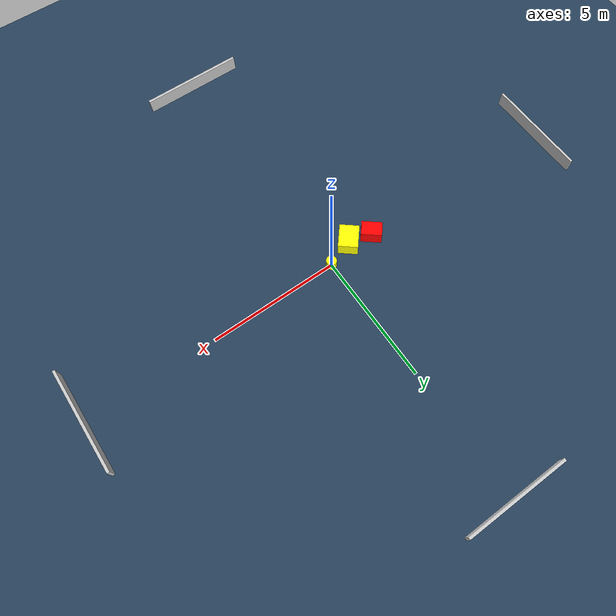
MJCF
<?xml version="1.0" ?>
<mujoco model="generated_environment">
  <option timestep="0.01" integrator="RK4" cone="elliptic"/>
  <default>
    <geom density="1"/>
  </default>
  <asset>
    <texture builtin="gradient" height="3072" name="skybox" rgb1="0.3 0.5 0.7" rgb2="0 0 0" type="skybox" width="512"/>
    <texture builtin="checker" height="300" name="groundplane" rgb1="0.2 0.3 0.4" rgb2="0.1 0.2 0.3" type="2d" width="300"/>
    <material name="groundplane" reflectance="0.2" texrepeat="5 5" texture="groundplane"/>
  </asset>
  <worldbody>
    <light dir="0 0 -1" directional="true" pos="0 0 1.5"/>
    <geom condim="3" friction="0.5 0.005 0.001" material="groundplane" name="floor" pos="0 0 0" size="0 0 0.05" type="plane"/>
    <body name="walls">
      <geom name="wall_1" condim="4" pos="-10.0 0.0 0.3" rgba="0.800000011920929 0.800000011920929 0.800000011920929 1.0" size="0.05 2.0 0.3" type="box"/>
      <geom name="wall_2" condim="4" pos="10.0 0.0 0.3" rgba="0.800000011920929 0.800000011920929 0.800000011920929 1.0" size="0.05 2.0 0.3" type="box"/>
      <geom name="wall_3" condim="4" pos="0.0 -10.0 0.3" rgba="0.800000011920929 0.800000011920929 0.800000011920929 1.0" size="2.0 0.05 0.3" type="box"/>
      <geom name="wall_4" condim="4" pos="0.0 10.0 0.3" rgba="0.800000011920929 0.800000011920929 0.800000011920929 1.0" size="2.0 0.05 0.3" type="box"/>
    </body>
    <body name="robot">
      <joint name="joint_x" type="slide" pos="0 0 0" axis="1 0 0"/>
      <joint name="joint_y" type="slide" pos="0 0 0" axis="0 1 0"/>
      <geom name="robot" type="cylinder" pos="0.0 0.0 0.2" size="0.2 0.2 0.0" mass="5.0" friction="1.0 0.005 0.0001" condim="4" rgba="1.0 1.0 0.0 1.0"/>
    </body>
    <body name="obstacle_1_movable">
      <geom name="obstacle_1_movable" condim="4" pos="-1.0420030400406282 -0.375470761113575 0.3" euler="0 0 230.45055730174556" friction="0.0 0.005 0.001" rgba="1.0 1.0 0.0 1.0" size="0.4467469046611814 0.3702448350606313 0.3" type="box" mass="0.1"/>
      <joint type="free"/>
    </body>
    <body name="obstacle_2_static">
      <geom name="obstacle_2_static" condim="4" pos="-1.920265290693026 -0.13513481345929135 0.3" euler="0 0 320.69811457715986" friction="0.0 0.005 0.001" rgba="1.0 0.0 0.0 1.0" size="0.3900971093094232 0.27464555474665064 0.3" type="box"/>
    </body>
  </worldbody>
  <actuator>
    <motor name="actuator_x" joint="joint_x" gear="1" ctrlrange="-1 1"/>
    <motor name="actuator_y" joint="joint_y" gear="1" ctrlrange="-1 1"/>
  </actuator>
</mujoco>
